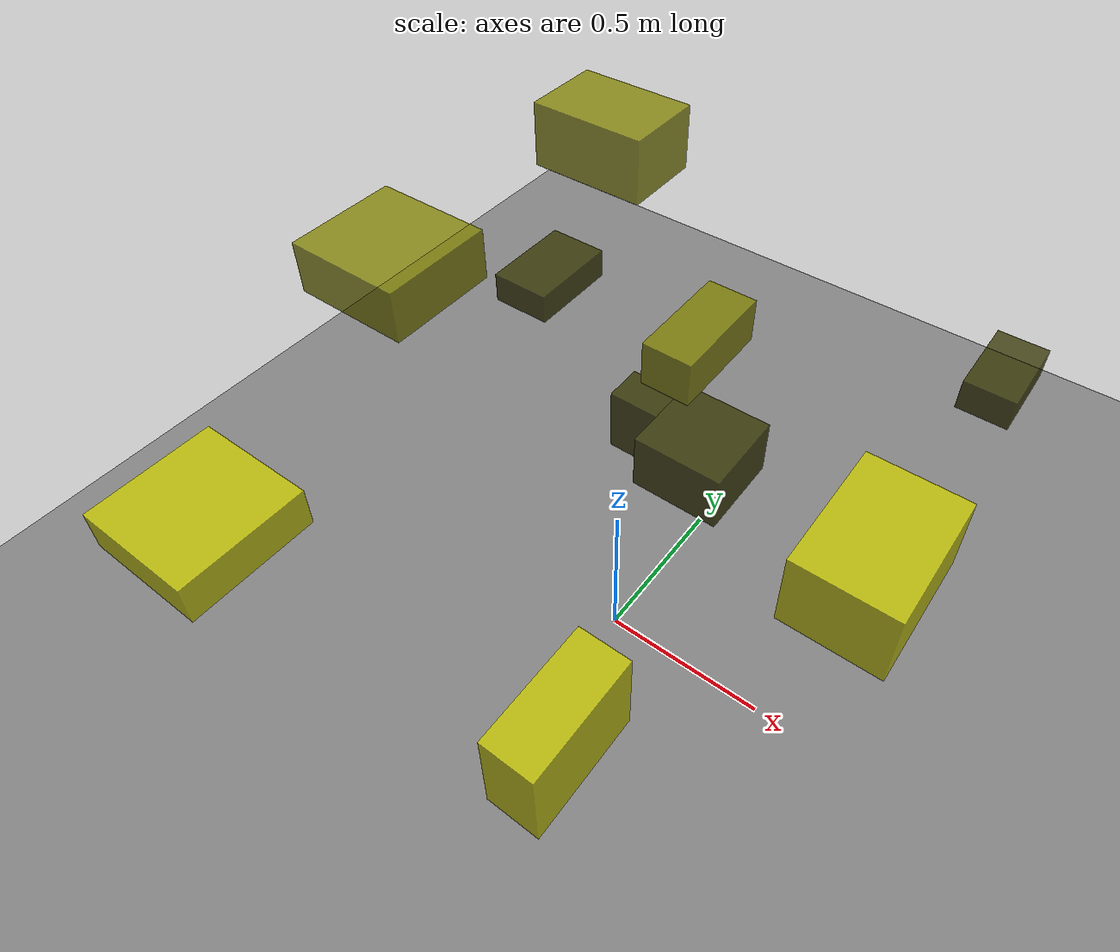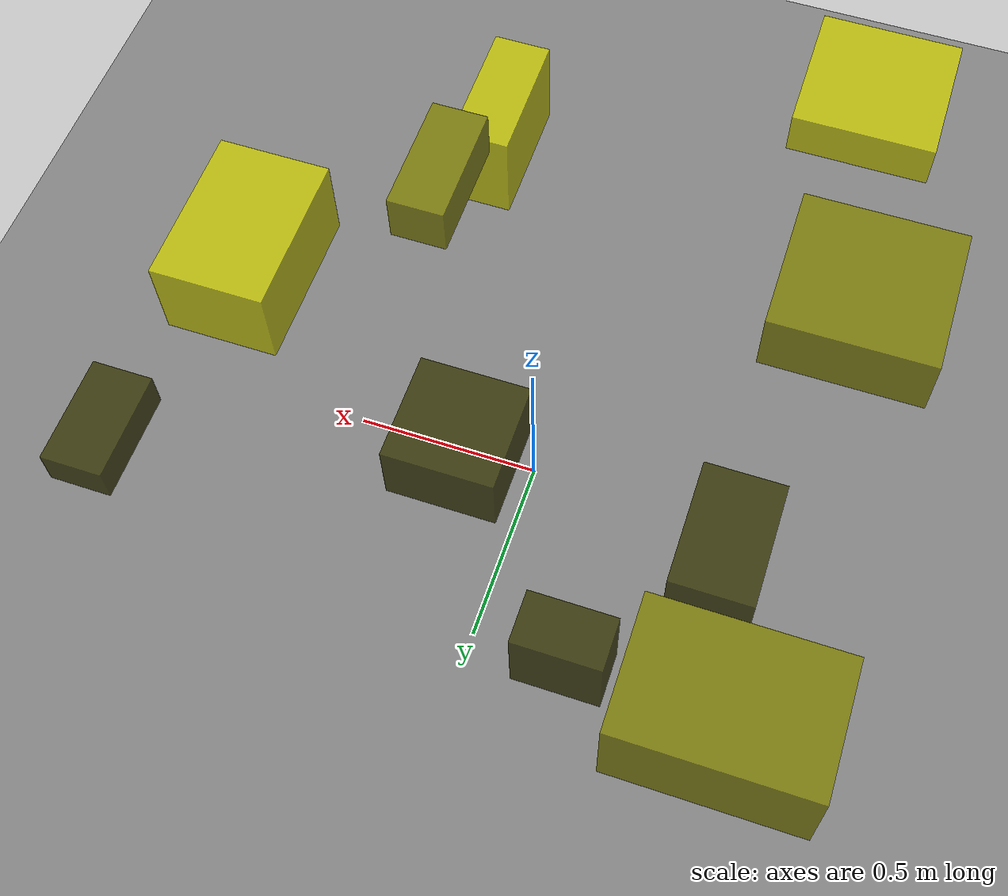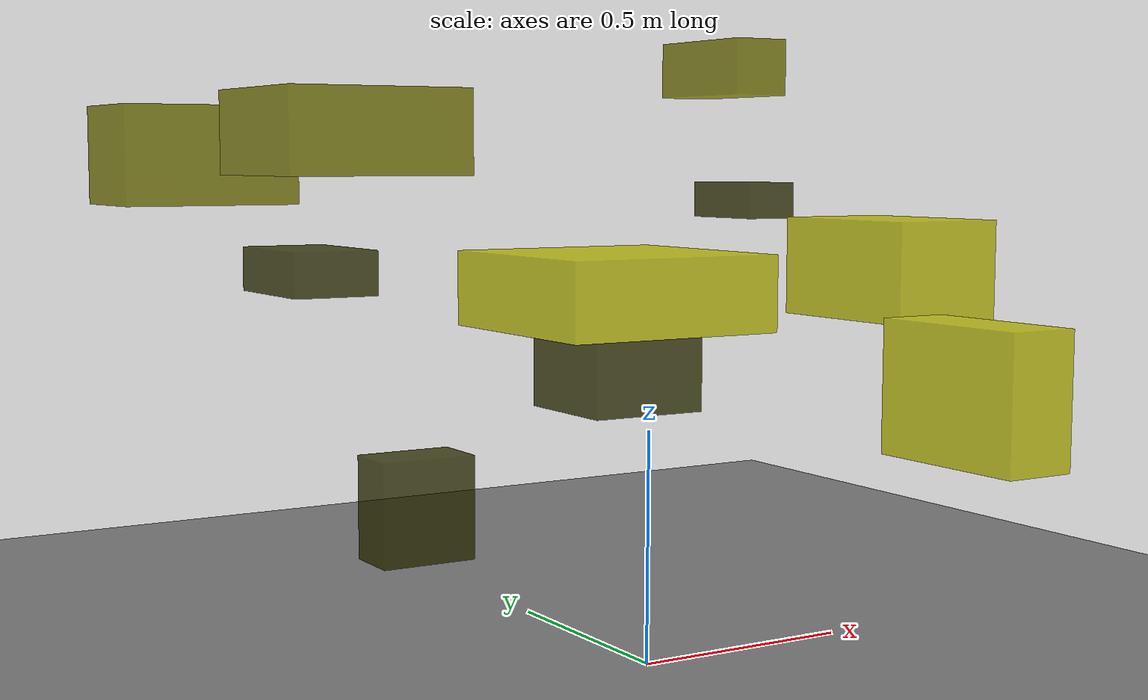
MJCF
<?xml version="1.0"?>
<mujoco model="obstacle_scene">
  <compiler angle="radian" coordinate="local"/>
  <option timestep="0.001" gravity="0 0 -9.81"/>

  <asset>
    <material name="obstacle_mat" rgba="0.8 0.8 0.0 0.8"/>
    <material name="ground_mat" rgba="0.5 0.5 0.5 1"/>
  </asset>

  <worldbody>
    <!-- Ground plane -->
    <geom name="ground" type="plane" size="3 3 0.1" material="ground_mat"/>

    <!-- Obstacles -->
    <body name="obstacle_0" pos="0.727124 0.651870 0.960011">
      <geom name="obs_0" type="box" size="0.068073 0.120076 0.044868" rgba="0.2 0.2 0.0 0.8"/>
    </body>
    <body name="obstacle_1" pos="-0.669423 0.881394 1.073418">
      <geom name="obs_1" type="box" size="0.201839 0.138667 0.111898" rgba="0.5 0.5 0.0 0.8"/>
    </body>
    <body name="obstacle_2" pos="0.296344 -0.638902 0.631810">
      <geom name="obs_2" type="box" size="0.073620 0.170071 0.131619" rgba="0.8 0.8 0.0 0.8"/>
    </body>
    <body name="obstacle_3" pos="0.093469 0.268953 0.598446">
      <geom name="obs_3" type="box" size="0.136695 0.134766 0.091013" rgba="0.2 0.2 0.0 0.8"/>
    </body>
    <body name="obstacle_4" pos="-0.710683 -0.052591 1.114695">
      <geom name="obs_4" type="box" size="0.177653 0.168228 0.078513" rgba="0.5 0.5 0.0 0.8"/>
    </body>
    <body name="obstacle_5" pos="-0.615506 -0.816397 0.869413">
      <geom name="obs_5" type="box" size="0.173836 0.172925 0.057531" rgba="0.8 0.8 0.0 0.8"/>
    </body>
    <body name="obstacle_6" pos="-0.263983 0.560670 0.267903">
      <geom name="obs_6" type="box" size="0.115139 0.068923 0.121469" rgba="0.2 0.2 0.0 0.8"/>
    </body>
    <body name="obstacle_7" pos="0.192609 0.017587 1.252917">
      <geom name="obs_7" type="box" size="0.061018 0.134353 0.057264" rgba="0.5 0.5 0.0 0.8"/>
    </body>
    <body name="obstacle_8" pos="0.687247 0.046689 0.817677">
      <geom name="obs_8" type="box" size="0.137188 0.197411 0.112200" rgba="0.8 0.8 0.0 0.8"/>
    </body>
    <body name="obstacle_9" pos="-0.575669 0.435178 0.829682">
      <geom name="obs_9" type="box" size="0.092948 0.143729 0.047429" rgba="0.2 0.2 0.0 0.8"/>
    </body>
  </worldbody>
</mujoco>
